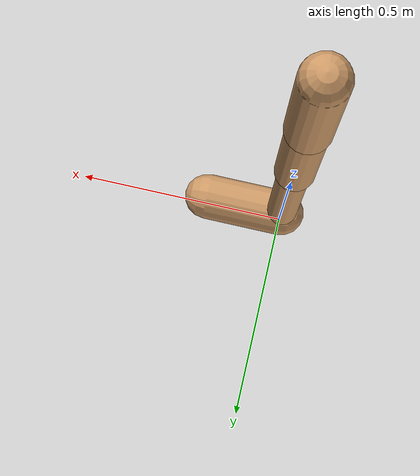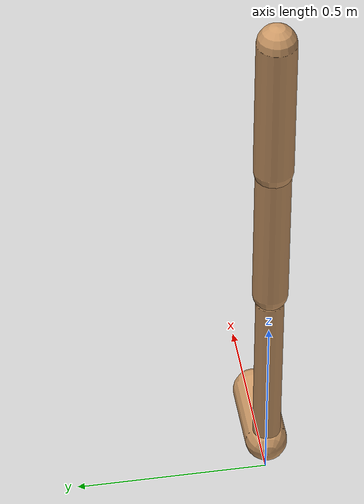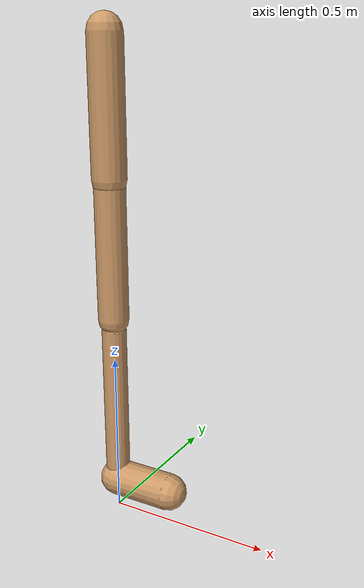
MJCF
<mujoco model="walker2d">
  <compiler angle="degree" coordinate="global" inertiafromgeom="true" />
  <default>
    <joint armature="0.01" damping=".1" limited="true" />
    <geom conaffinity="0" condim="3" contype="1" density="1000" friction="0.8 .1 .1" rgba="0.8 0.6 .4 1" />
  </default>
  <option integrator="RK4" timestep="0.002" />
  <worldbody>

    <body name="torso" pos="0 0 -0.0688590793905118">
      <joint armature="0" axis="1 0 0" damping="0" limited="false" name="ignorex" pos="0 0 0" stiffness="0" type="slide" />
      <joint armature="0" axis="0 0 1" damping="0" limited="false" name="ignorez" pos="0 0 0" ref="1.25" stiffness="0" type="slide" />
      <joint armature="0" axis="0 1 0" damping="0" limited="false" name="ignorey" pos="0 0 0" stiffness="0" type="hinge" />
      <geom fromto="0 0 1.45 0 0 1.05" name="torso_geom" size="0.05091753002388427" type="capsule" />
      <body name="thigh">
        <joint axis="0 -1 0" name="thigh_joint" pos="0 0 1.05" range="-150 0" type="hinge" />
        <geom fromto="0.0 0.0 1.05 0.0 0.0 0.6326174586586635" name="thigh_geom" size="0.04605872140486246" type="capsule" />
        <body name="leg" pos="0.0 0.0 0.0326174586586635">
          <joint axis="0 -1 0" name="leg_joint" pos="0 0 0.6" range="-150 0" type="hinge" />
          <geom fromto="0.0 0.0 0.6 0.0 0.0 0.1362416207318483" name="leg_geom" size="0.036846977123889964" type="capsule" />
          <body name="foot" pos="0.0 0.0 0.036241620731848306">
            <joint axis="0 -1 0" name="foot_joint" pos="0 0 0.1" range="-45 45" type="hinge" />
            <geom fromto="0.0 0.0 0.1 0.1857367251285771 0.0 0.1" name="foot_geom" size="0.05549801219111997" type="capsule" />
          </body>
        </body>
      </body>

      <body name="thigh_left">
        <joint axis="0 -1 0" name="thigh_left_joint" pos="0 0 1.05" range="-150 0" type="hinge" />
        <geom fromto="0.0 0.0 1.05 0.0 0.0 0.6326174586586635" name="thigh_left_geom" rgba=".7 .3 .6 1" size="0.04605872140486246" type="capsule" />
        <body name="leg_left" pos="0.0 0.0 0.0326174586586635">
          <joint axis="0 -1 0" name="leg_left_joint" pos="0 0 0.6" range="-150 0" type="hinge" />
          <geom fromto="0.0 0.0 0.6 0.0 0.0 0.1362416207318483" name="leg_left_geom" rgba=".7 .3 .6 1" size="0.036846977123889964" type="capsule" />
          <body name="foot_left" pos="0.0 0.0 0.036241620731848306">
            <joint axis="0 -1 0" name="foot_left_joint" pos="0 0 0.1" range="-45 45" type="hinge" />
            <geom fromto="0.0 0.0 0.1 0.1857367251285771 0.0 0.1" name="foot_left_geom" rgba=".7 .3 .6 1" size="0.05549801219111997" type="capsule" />
          </body>
        </body>
      </body>
    </body>
  </worldbody>
  <actuator>

    <motor ctrllimited="true" ctrlrange="-1.0 1.0" gear="100" joint="thigh_joint" />
    <motor ctrllimited="true" ctrlrange="-1.0 1.0" gear="100" joint="leg_joint" />
    <motor ctrllimited="true" ctrlrange="-1.0 1.0" gear="100" joint="foot_joint" />
    <motor ctrllimited="true" ctrlrange="-1.0 1.0" gear="100" joint="thigh_left_joint" />
    <motor ctrllimited="true" ctrlrange="-1.0 1.0" gear="100" joint="leg_left_joint" />
    <motor ctrllimited="true" ctrlrange="-1.0 1.0" gear="100" joint="foot_left_joint" />

  </actuator>
</mujoco>
